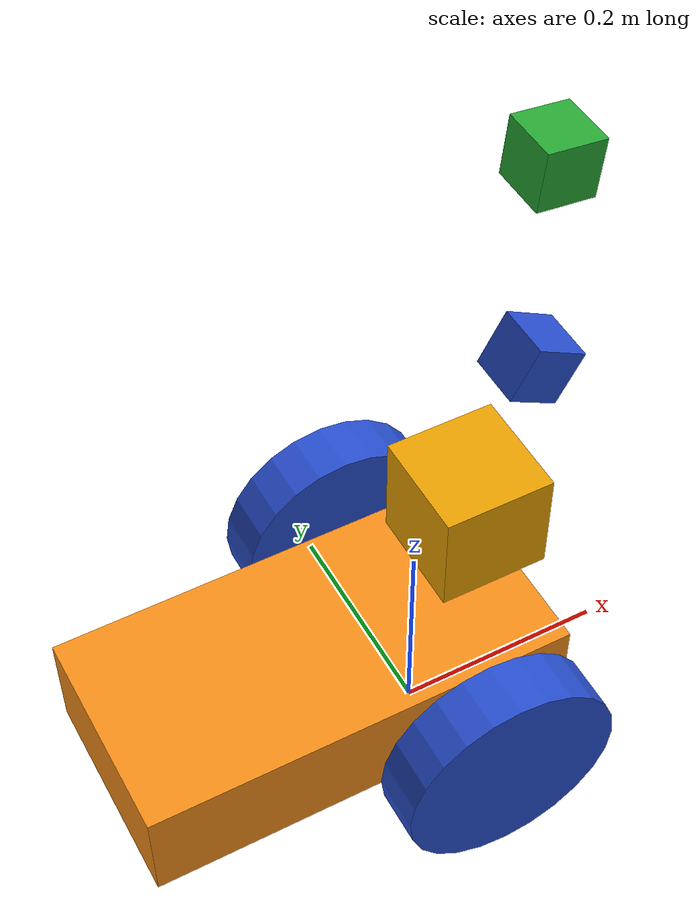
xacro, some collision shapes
<?xml version='1.0'?>

<robot name="myrobot" xmlns:xacro="http://www.ros.org/wiki/xacro">

  <xacro:property name="cameraSize" value="0.05"/>
  <xacro:property name="cameraMass" value="0.1"/>

  <xacro:include filename="$(find mybot_description)/urdf/mybot.gazebo" />
  <xacro:include filename="$(find mybot_description)/urdf/materials.xacro" />
  <xacro:include filename="$(find mybot_description)/urdf/macros.xacro" />

  <link name='base_link'>
    </link>

    <joint name="base_link_joint" type="fixed">
    <axis xyz="0 1 0" />
    <origin xyz="-0.1 0 0.1" rpy="0 0 0"/>
    <parent link="base_link"/>
    <child link="chassis"/>
  </joint>

  <link name='chassis'>
    <pose>0 0 0.1 0 0 0</pose>

    <inertial>
      <mass value="10.0"/>
      <origin xyz="0.0 0 0.1" rpy=" 0 0 0"/>
      <inertia
          ixx="0.5" ixy="0" ixz="0"
          iyy="1.0" iyz="0"
          izz="0.1"
      />
    </inertial>

    <collision name='collision'>
      <geometry>
        <box size=".4 .2 .1"/>
      </geometry>
    </collision>

    <visual name='chassis_visual'>
      <origin xyz="0 0 0" rpy=" 0 0 0"/>
      <geometry>
        <box size=".4 .2 .1"/>
      </geometry>
    </visual>

    <collision name='caster_collision'>
      <origin xyz="-0.15 0 -0.05" rpy=" 0 0 0"/>
      <geometry>
        <sphere radius="0.05"/>
      </geometry>
      <surface>
        <friction>
          <ode>
            <mu>0</mu>
            <mu2>0</mu2>
            <slip1>1.0</slip1>
            <slip2>1.0</slip2>
          </ode>
        </friction>
      </surface>
    </collision>

    <visual name='caster_visual'>
      <origin xyz="-0.15 0 -0.05" rpy=" 0 0 0"/>
      <geometry>
        <sphere radius="0.05"/>
      </geometry>
    </visual>
  </link>

  <link name="left_wheel">
    <!--origin xyz="0.1 0.13 0.1" rpy="0 1.5707 1.5707"/-->
    <collision name="collision">
      <origin xyz="0 0 0" rpy="0 1.5707 1.5707"/>
      <geometry>
        <cylinder radius="0.1" length="0.05"/>
      </geometry>
    </collision>
    <visual name="left_wheel_visual">
      <origin xyz="0 0 0" rpy="0 1.5707 1.5707"/>
      <geometry>
        <cylinder radius="0.1" length="0.05"/>
      </geometry>
    </visual>
    <inertial>
      <origin xyz="0 0 0" rpy="0 1.5707 1.5707"/>
      <mass value="5"/>
      <cylinder_inertia m="5" r="0.1" h="0.05"/>
      <inertia
        ixx="1.0" ixy="0.0" ixz="0.0"
        iyy="1.0" iyz="0.0"
        izz="1.0"/>
    </inertial>
  </link>

  <link name="right_wheel">
    <!--origin xyz="0.1 -0.13 0.1" rpy="0 1.5707 1.5707"/-->
    <collision name="collision">
      <origin xyz="0 0 0" rpy="0 1.5707 1.5707"/>
      <geometry>
        <cylinder radius="0.1" length="0.05"/>
      </geometry>
    </collision>
    <visual name="right_wheel_visual">
      <origin xyz="0 0 0" rpy="0 1.5707 1.5707"/>
      <geometry>
        <cylinder radius="0.1" length="0.05"/>
      </geometry>
    </visual>
    <inertial>
      <origin xyz="0 0 0" rpy="0 1.5707 1.5707"/>
      <mass value="5"/>
      <cylinder_inertia m="5" r="0.1" h="0.05"/>
      <inertia
        ixx="1.0" ixy="0.0" ixz="0.0"
        iyy="1.0" iyz="0.0"
        izz="1.0"/>
    </inertial>
  </link>

  <joint type="continuous" name="left_wheel_hinge">
    <origin xyz="0.1 0.15 0" rpy="0 0 0"/>
    <!--origin xyz="0.1 0.13 0" rpy="0 1.5707 1.5707"/-->
    <child link="left_wheel"/>
    <parent link="chassis"/>
    <axis xyz="0 1 0" rpy="0 0 0"/>
    <limit effort="100" velocity="100"/>
    <joint_properties damping="0.0" friction="0.0"/>
  </joint>

  <joint type="continuous" name="right_wheel_hinge">
    <origin xyz="0.1 -0.15 0" rpy="0 0 0"/>
    <!--origin xyz="0.1 -0.13 0" rpy="0 1.5707 1.5707"/-->
    <child link="right_wheel"/>
    <parent link="chassis"/>
    <axis xyz="0 1 0" rpy="0 0 0"/>
    <limit effort="100" velocity="100"/>
    <joint_properties damping="0.0" friction="0.0"/>
  </joint>

  <link name="camera">
    <collision>
      <origin xyz="0 0 0" rpy="0 0 0"/>
      <geometry>
        <box size="${cameraSize} ${cameraSize} ${cameraSize}"/>
      </geometry>
    </collision>

    <visual>
      <origin xyz="0 0 0" rpy="0 0 0"/>
      <geometry>
        <box size="${cameraSize} ${cameraSize} ${cameraSize}"/>
      </geometry>
      <material name="green"/>
    </visual>

    <inertial>
      <mass value="${cameraMass}" />
      <origin xyz="0 0 0" rpy="0 0 0"/>
      <box_inertia m="${cameraMass}" x="${cameraSize}" y="${cameraSize}" z="${cameraSize}" />
      <inertia ixx="1e-6" ixy="0" ixz="0" iyy="1e-6" iyz="0" izz="1e-6" />
    </inertial>
  </link>

  <joint name="camera_joint" type="fixed">
    <axis xyz="0 1 0" />
    <origin xyz=".2 0 0.5" rpy="0 0.1 0"/>
    <parent link="chassis"/>
    <child link="camera"/>
  </joint>

  <link name="camera_optical">
    </link>

  <joint name="camera_optical_joint" type="fixed">
    <axis xyz="0 1 0" />
    <origin xyz="0 0 0" rpy="-1.57 0 -1.57"/>
    <parent link="camera"/>
    <child link="camera_optical"/>
  </joint>

  <joint name="hokuyo_joint" type="fixed">
    <axis xyz="0 1 0" />
    <origin xyz=".15 0 .15" rpy="0 0 0"/>
    <parent link="chassis"/>
    <child link="hokuyo"/>
  </joint>

  <link name="depth_camera">
      <collision>
      <origin xyz="0 0 0" rpy="0 0 0"/>
      <geometry>
        <box size="${cameraSize} ${cameraSize} ${cameraSize}"/>
      </geometry>
    </collision>

    <visual>
      <origin xyz="0 0 0" rpy="0 0 0"/>
      <geometry>
        <box size="${cameraSize} ${cameraSize} ${cameraSize}"/>
      </geometry>
      <material name="blue"/>

      <collision>
      <origin xyz="0 0 0" rpy="0 0 0"/>
      <geometry>
        <box size="${cameraSize} ${cameraSize} ${cameraSize}"/>
      </geometry>
    </collision>

    <visual>
      <origin xyz="0 0 0" rpy="0 0 0"/>
      <geometry>
        <box size="${cameraSize} ${cameraSize} ${cameraSize}"/>
      </geometry>
      <material name="blue"/>
    </visual>
    </visual>

  </link>

  <joint name="depth_camera_joint" type="fixed">
    <axis xyz="0 1 0" />
    <origin xyz="0.2 0 0.3" rpy="-1.57 0.5 0"/>
    <parent link="chassis"/>
    <child link="depth_camera"/>
  </joint>

  <link name="depth_camera_optical">
  </link>

  <joint name="depth_camera_optical_joint" type="fixed">
    <axis xyz="0 1 0" />
    <origin xyz="0 0 0" rpy="-1.57 0 -1.57"/>
    <parent link="depth_camera"/>
    <child link="depth_camera_optical"/>
  </joint>

  <!-- Hokuyo Laser -->
  <link name="hokuyo">
    <collision>
      <origin xyz="0 0 0" rpy="0 0 0"/>
      <geometry>
    <box size="0.1 0.1 0.1"/>
      </geometry>
    </collision>

    <visual>
      <origin xyz="0 0 0" rpy="0 0 0"/>
      <geometry>
        <mesh filename="package://mybot_description/meshes/hokuyo.dae"/>
      </geometry>
    </visual>

    <inertial>
      <mass value="1e-5" />
      <origin xyz="0 0 0" rpy="0 0 0"/>
      <inertia ixx="1e-6" ixy="0" ixz="0" iyy="1e-6" iyz="0" izz="1e-6" />
    </inertial>
  </link>

</robot>
